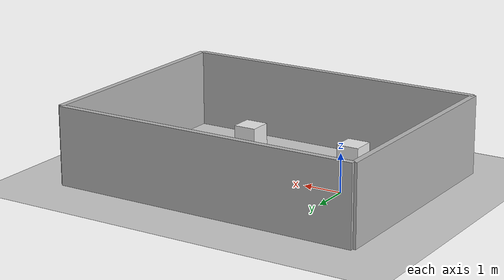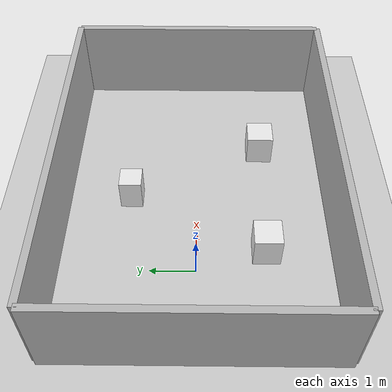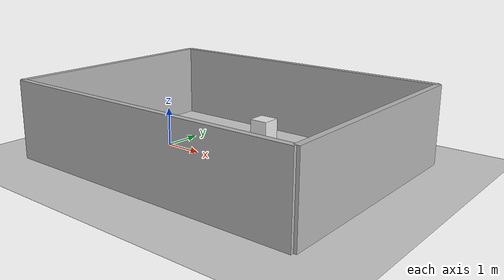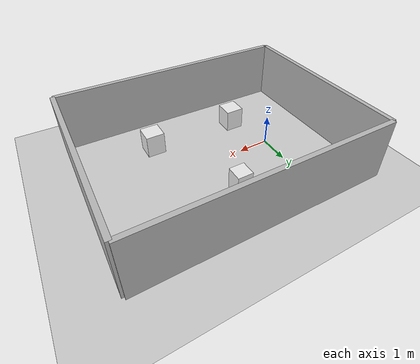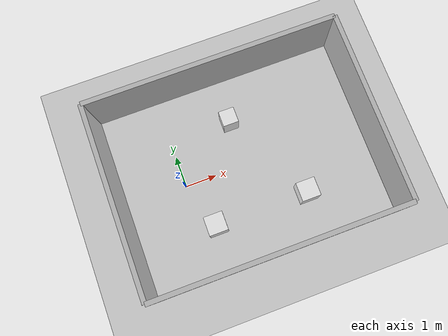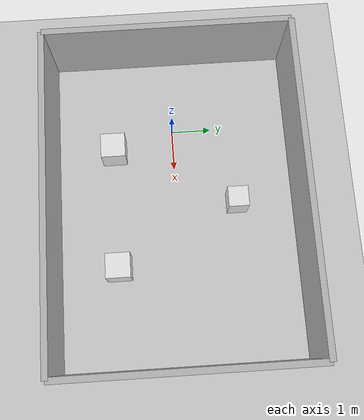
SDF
<?xml version="1.0" ?>
<sdf version='1.6'>
  <world name='default'>
    <light name='sun' type='directional'>
      <cast_shadows>1</cast_shadows>
      <pose frame=''>0 0 10 0 -0 0</pose>
      <diffuse>0.8 0.8 0.8 1</diffuse>
      <specular>0.2 0.2 0.2 1</specular>
      <attenuation>
        <range>1000</range>
        <constant>0.9</constant>
        <linear>0.01</linear>
        <quadratic>0.001</quadratic>
      </attenuation>
      <direction>-0.5 0.1 -0.9</direction>
    </light>

    <model name='ground_plane'>
      <static>1</static>
      <link name='link'>
        <collision name='collision'>
          <geometry><plane><normal>0 0 1</normal><size>100 100</size></plane></geometry>
          <surface>
            <contact><collide_bitmask>65535</collide_bitmask><ode/></contact>
            <friction><ode><mu>100</mu><mu2>50</mu2></ode></friction>
          </surface>
          <max_contacts>10</max_contacts>
        </collision>
        <visual name='visual'>
          <cast_shadows>0</cast_shadows>
          <geometry><plane><normal>0 0 1</normal><size>100 100</size></plane></geometry>
          <material><script><uri>file://media/materials/scripts/gazebo.material</uri><name>Gazebo/Grey</name></script></material>
        </visual>
      </link>
    </model>

    <model name='warehouse_walls'>
      <static>1</static>
      <link name='wall_north'>
        <pose>2.0 3.0 1.0 0 0 0</pose>
        <collision name='collision'><geometry><box><size>8.0 0.15 2.0</size></box></geometry></collision>
        <visual name='visual'><geometry><box><size>8.0 0.15 2.0</size></box></geometry>
        <material><script><uri>file://media/materials/scripts/gazebo.material</uri><name>Gazebo/Brick</name></script></material></visual>
      </link>
      <link name='wall_south'>
        <pose>2.0 -3.0 1.0 0 0 0</pose>
        <collision name='collision'><geometry><box><size>8.0 0.15 2.0</size></box></geometry></collision>
        <visual name='visual'><geometry><box><size>8.0 0.15 2.0</size></box></geometry>
        <material><script><uri>file://media/materials/scripts/gazebo.material</uri><name>Gazebo/Brick</name></script></material></visual>
      </link>
      <link name='wall_east'>
        <pose>6.0 0 1.0 0 0 0</pose>
        <collision name='collision'><geometry><box><size>0.15 6.0 2.0</size></box></geometry></collision>
        <visual name='visual'><geometry><box><size>0.15 6.0 2.0</size></box></geometry>
        <material><script><uri>file://media/materials/scripts/gazebo.material</uri><name>Gazebo/Brick</name></script></material></visual>
      </link>
      <link name='wall_west'>
        <pose>-2.0 0 1.0 0 0 0</pose>
        <collision name='collision'><geometry><box><size>0.15 6.0 2.0</size></box></geometry></collision>
        <visual name='visual'><geometry><box><size>0.15 6.0 2.0</size></box></geometry>
        <material><script><uri>file://media/materials/scripts/gazebo.material</uri><name>Gazebo/Brick</name></script></material></visual>
      </link>
    </model>

    <model name="pickup_table_A">
      <static>1</static>
      <pose>2.0 1.5 0.375 0 0 0</pose>
      <link name="link">
        <collision name="collision"><geometry><box><size>0.5 0.5 0.75</size></box></geometry></collision>
        <visual name="visual">
          <geometry><box><size>0.5 0.5 0.75</size></box></geometry>
          <material><script><uri>file://media/materials/scripts/gazebo.material</uri><name>Gazebo/White</name></script></material>
        </visual>
      </link>
    </model>

    <model name="pallet_B">
      <static>1</static>
      <pose>0.5 -1.5 0.375 0 0 0</pose>
      <link name="link">
        <collision name="collision"><geometry><box><size>0.6 0.6 0.75</size></box></geometry></collision>
        <visual name="visual">
          <geometry><box><size>0.6 0.6 0.75</size></box></geometry>
          <material><script><uri>file://media/materials/scripts/gazebo.material</uri><name>Gazebo/White</name></script></material>
        </visual>
      </link>
    </model>

    <model name="pallet_C">
      <static>1</static>
      <pose>3.5 -1.5 0.375 0 0 0</pose>
      <link name="link">
        <collision name="collision"><geometry><box><size>0.6 0.6 0.75</size></box></geometry></collision>
        <visual name="visual">
          <geometry><box><size>0.6 0.6 0.75</size></box></geometry>
          <material><script><uri>file://media/materials/scripts/gazebo.material</uri><name>Gazebo/White</name></script></material>
        </visual>
      </link>
    </model>

    <gravity>0 0 -9.8</gravity>
    <magnetic_field>6e-06 2.3e-05 -4.2e-05</magnetic_field>
    <atmosphere type='adiabatic'/>
    <physics name='default_physics' default='0' type='ode'>
      <max_step_size>0.001</max_step_size>
      <real_time_factor>1</real_time_factor>
      <real_time_update_rate>1000</real_time_update_rate>
    </physics>
    <scene>
      <ambient>0.4 0.4 0.4 1</ambient>
      <background>0.7 0.7 0.7 1</background>
      <shadows>1</shadows>
    </scene>
    <audio><device>default</device></audio>
    <wind/>
    <spherical_coordinates>
      <surface_model>EARTH_WGS84</surface_model>
      <latitude_deg>0</latitude_deg>
      <longitude_deg>0</longitude_deg>
      <elevation>0</elevation>
      <heading_deg>0</heading_deg>
    </spherical_coordinates>

    <gui fullscreen='0'>
      <camera name='user_camera'>
        <pose frame=''>-3.5 0.5 5.5 0 0.6 -0.15</pose>
        <view_controller>orbit</view_controller>
        <projection_type>perspective</projection_type>
      </camera>
    </gui>
  </world>
</sdf>
